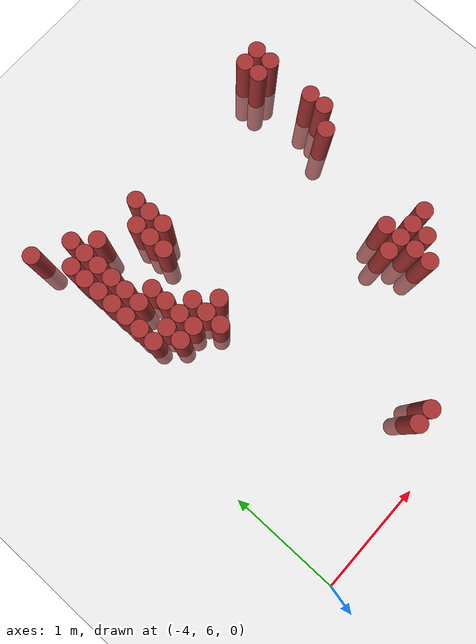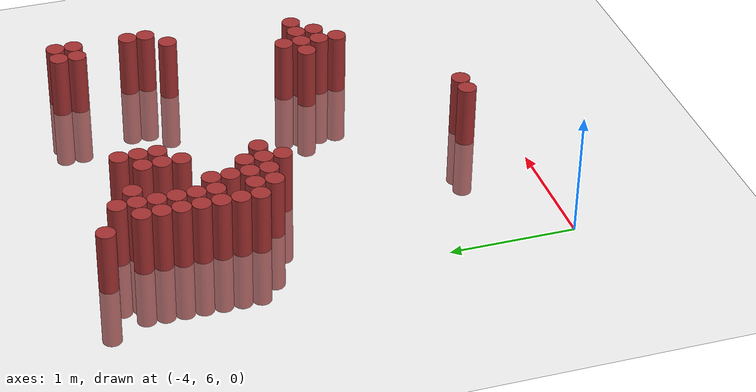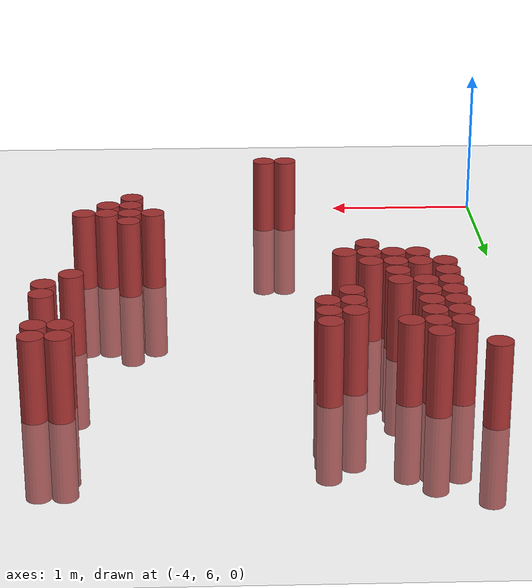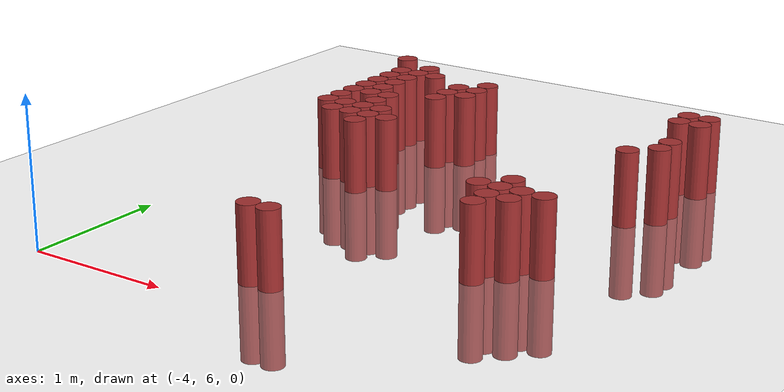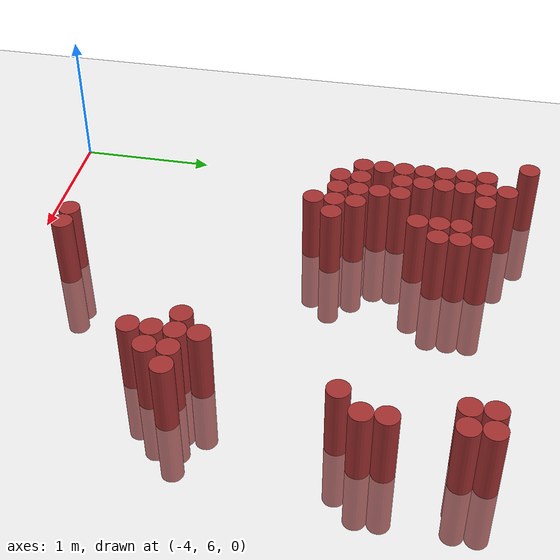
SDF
<sdf version="1.6">
 <world name="default">
  <model name="ground_plane">
   <static>1</static>
   <link name="link">
    <collision name="collision">
     <geometry><plane><normal>0 0 1</normal><size>100 100</size></plane></geometry>
     <surface><friction><ode><mu>100</mu><mu2>50</mu2></ode></friction></surface>
    </collision>
    <visual name="visual">
     <cast_shadows>0</cast_shadows>
     <geometry><plane><normal>0 0 1</normal><size>100 100</size></plane></geometry>
     <material>
      <script><uri>file://media/materials/scripts/gazebo.material</uri><name>Gazebo/Grey</name></script>
     </material>
    </visual>
   </link>
  </model>
  <model name="unit_cylinder_171">
   <static>1</static>
   <pose>-3.675000 9.525000 0.000000 0.000000 0.000000 0.000000</pose>
   <link name="link">
    <inertial>
     <mass>1</mass>
     <inertia><ixx>0.145833</ixx><ixy>0</ixy><ixz>0</ixz><iyy>0.145833</iyy><iyz>0</iyz><izz>0.125</izz></inertia>
    </inertial>
    <collision name="collision">
     <geometry><cylinder><radius>0.075000</radius><length>1</length></cylinder></geometry>
    </collision>
    <visual name="visual">
     <geometry><cylinder><radius>0.075000</radius><length>1</length></cylinder></geometry>
     <material>
      <ambient>0.648000 0.192000 0.192000 1</ambient>
      <diffuse>0.648000 0.192000 0.192000 1</diffuse>
     </material>
     <material>
      <script><name>Gazebo/Grey</name><uri>file://media/materials/scripts/gazebo.material</uri></script>
     </material>
    </visual>
   </link>
  </model>
  <model name="unit_cylinder_172">
   <static>1</static>
   <pose>-3.525000 8.325000 0.000000 0.000000 0.000000 0.000000</pose>
   <link name="link">
    <inertial>
     <mass>1</mass>
     <inertia><ixx>0.145833</ixx><ixy>0</ixy><ixz>0</ixz><iyy>0.145833</iyy><iyz>0</iyz><izz>0.125</izz></inertia>
    </inertial>
    <collision name="collision">
     <geometry><cylinder><radius>0.075000</radius><length>1</length></cylinder></geometry>
    </collision>
    <visual name="visual">
     <geometry><cylinder><radius>0.075000</radius><length>1</length></cylinder></geometry>
     <material>
      <ambient>0.648000 0.192000 0.192000 1</ambient>
      <diffuse>0.648000 0.192000 0.192000 1</diffuse>
     </material>
     <material>
      <script><name>Gazebo/Grey</name><uri>file://media/materials/scripts/gazebo.material</uri></script>
     </material>
    </visual>
   </link>
  </model>
  <model name="unit_cylinder_173">
   <static>1</static>
   <pose>-3.525000 8.475000 0.000000 0.000000 0.000000 0.000000</pose>
   <link name="link">
    <inertial>
     <mass>1</mass>
     <inertia><ixx>0.145833</ixx><ixy>0</ixy><ixz>0</ixz><iyy>0.145833</iyy><iyz>0</iyz><izz>0.125</izz></inertia>
    </inertial>
    <collision name="collision">
     <geometry><cylinder><radius>0.075000</radius><length>1</length></cylinder></geometry>
    </collision>
    <visual name="visual">
     <geometry><cylinder><radius>0.075000</radius><length>1</length></cylinder></geometry>
     <material>
      <ambient>0.648000 0.192000 0.192000 1</ambient>
      <diffuse>0.648000 0.192000 0.192000 1</diffuse>
     </material>
     <material>
      <script><name>Gazebo/Grey</name><uri>file://media/materials/scripts/gazebo.material</uri></script>
     </material>
    </visual>
   </link>
  </model>
  <model name="unit_cylinder_174">
   <static>1</static>
   <pose>-3.525000 8.625000 0.000000 0.000000 0.000000 0.000000</pose>
   <link name="link">
    <inertial>
     <mass>1</mass>
     <inertia><ixx>0.145833</ixx><ixy>0</ixy><ixz>0</ixz><iyy>0.145833</iyy><iyz>0</iyz><izz>0.125</izz></inertia>
    </inertial>
    <collision name="collision">
     <geometry><cylinder><radius>0.075000</radius><length>1</length></cylinder></geometry>
    </collision>
    <visual name="visual">
     <geometry><cylinder><radius>0.075000</radius><length>1</length></cylinder></geometry>
     <material>
      <ambient>0.648000 0.192000 0.192000 1</ambient>
      <diffuse>0.648000 0.192000 0.192000 1</diffuse>
     </material>
     <material>
      <script><name>Gazebo/Grey</name><uri>file://media/materials/scripts/gazebo.material</uri></script>
     </material>
    </visual>
   </link>
  </model>
  <model name="unit_cylinder_175">
   <static>1</static>
   <pose>-3.525000 8.775000 0.000000 0.000000 0.000000 0.000000</pose>
   <link name="link">
    <inertial>
     <mass>1</mass>
     <inertia><ixx>0.145833</ixx><ixy>0</ixy><ixz>0</ixz><iyy>0.145833</iyy><iyz>0</iyz><izz>0.125</izz></inertia>
    </inertial>
    <collision name="collision">
     <geometry><cylinder><radius>0.075000</radius><length>1</length></cylinder></geometry>
    </collision>
    <visual name="visual">
     <geometry><cylinder><radius>0.075000</radius><length>1</length></cylinder></geometry>
     <material>
      <ambient>0.648000 0.192000 0.192000 1</ambient>
      <diffuse>0.648000 0.192000 0.192000 1</diffuse>
     </material>
     <material>
      <script><name>Gazebo/Grey</name><uri>file://media/materials/scripts/gazebo.material</uri></script>
     </material>
    </visual>
   </link>
  </model>
  <model name="unit_cylinder_176">
   <static>1</static>
   <pose>-3.525000 8.925000 0.000000 0.000000 0.000000 0.000000</pose>
   <link name="link">
    <inertial>
     <mass>1</mass>
     <inertia><ixx>0.145833</ixx><ixy>0</ixy><ixz>0</ixz><iyy>0.145833</iyy><iyz>0</iyz><izz>0.125</izz></inertia>
    </inertial>
    <collision name="collision">
     <geometry><cylinder><radius>0.075000</radius><length>1</length></cylinder></geometry>
    </collision>
    <visual name="visual">
     <geometry><cylinder><radius>0.075000</radius><length>1</length></cylinder></geometry>
     <material>
      <ambient>0.648000 0.192000 0.192000 1</ambient>
      <diffuse>0.648000 0.192000 0.192000 1</diffuse>
     </material>
     <material>
      <script><name>Gazebo/Grey</name><uri>file://media/materials/scripts/gazebo.material</uri></script>
     </material>
    </visual>
   </link>
  </model>
  <model name="unit_cylinder_177">
   <static>1</static>
   <pose>-3.525000 9.075000 0.000000 0.000000 0.000000 0.000000</pose>
   <link name="link">
    <inertial>
     <mass>1</mass>
     <inertia><ixx>0.145833</ixx><ixy>0</ixy><ixz>0</ixz><iyy>0.145833</iyy><iyz>0</iyz><izz>0.125</izz></inertia>
    </inertial>
    <collision name="collision">
     <geometry><cylinder><radius>0.075000</radius><length>1</length></cylinder></geometry>
    </collision>
    <visual name="visual">
     <geometry><cylinder><radius>0.075000</radius><length>1</length></cylinder></geometry>
     <material>
      <ambient>0.648000 0.192000 0.192000 1</ambient>
      <diffuse>0.648000 0.192000 0.192000 1</diffuse>
     </material>
     <material>
      <script><name>Gazebo/Grey</name><uri>file://media/materials/scripts/gazebo.material</uri></script>
     </material>
    </visual>
   </link>
  </model>
  <model name="unit_cylinder_178">
   <static>1</static>
   <pose>-3.525000 9.225000 0.000000 0.000000 0.000000 0.000000</pose>
   <link name="link">
    <inertial>
     <mass>1</mass>
     <inertia><ixx>0.145833</ixx><ixy>0</ixy><ixz>0</ixz><iyy>0.145833</iyy><iyz>0</iyz><izz>0.125</izz></inertia>
    </inertial>
    <collision name="collision">
     <geometry><cylinder><radius>0.075000</radius><length>1</length></cylinder></geometry>
    </collision>
    <visual name="visual">
     <geometry><cylinder><radius>0.075000</radius><length>1</length></cylinder></geometry>
     <material>
      <ambient>0.648000 0.192000 0.192000 1</ambient>
      <diffuse>0.648000 0.192000 0.192000 1</diffuse>
     </material>
     <material>
      <script><name>Gazebo/Grey</name><uri>file://media/materials/scripts/gazebo.material</uri></script>
     </material>
    </visual>
   </link>
  </model>
  <model name="unit_cylinder_179">
   <static>1</static>
   <pose>-3.375000 8.175000 0.000000 0.000000 0.000000 0.000000</pose>
   <link name="link">
    <inertial>
     <mass>1</mass>
     <inertia><ixx>0.145833</ixx><ixy>0</ixy><ixz>0</ixz><iyy>0.145833</iyy><iyz>0</iyz><izz>0.125</izz></inertia>
    </inertial>
    <collision name="collision">
     <geometry><cylinder><radius>0.075000</radius><length>1</length></cylinder></geometry>
    </collision>
    <visual name="visual">
     <geometry><cylinder><radius>0.075000</radius><length>1</length></cylinder></geometry>
     <material>
      <ambient>0.648000 0.192000 0.192000 1</ambient>
      <diffuse>0.648000 0.192000 0.192000 1</diffuse>
     </material>
     <material>
      <script><name>Gazebo/Grey</name><uri>file://media/materials/scripts/gazebo.material</uri></script>
     </material>
    </visual>
   </link>
  </model>
  <model name="unit_cylinder_180">
   <static>1</static>
   <pose>-3.375000 8.325000 0.000000 0.000000 0.000000 0.000000</pose>
   <link name="link">
    <inertial>
     <mass>1</mass>
     <inertia><ixx>0.145833</ixx><ixy>0</ixy><ixz>0</ixz><iyy>0.145833</iyy><iyz>0</iyz><izz>0.125</izz></inertia>
    </inertial>
    <collision name="collision">
     <geometry><cylinder><radius>0.075000</radius><length>1</length></cylinder></geometry>
    </collision>
    <visual name="visual">
     <geometry><cylinder><radius>0.075000</radius><length>1</length></cylinder></geometry>
     <material>
      <ambient>0.648000 0.192000 0.192000 1</ambient>
      <diffuse>0.648000 0.192000 0.192000 1</diffuse>
     </material>
     <material>
      <script><name>Gazebo/Grey</name><uri>file://media/materials/scripts/gazebo.material</uri></script>
     </material>
    </visual>
   </link>
  </model>
  <model name="unit_cylinder_181">
   <static>1</static>
   <pose>-3.375000 8.625000 0.000000 0.000000 0.000000 0.000000</pose>
   <link name="link">
    <inertial>
     <mass>1</mass>
     <inertia><ixx>0.145833</ixx><ixy>0</ixy><ixz>0</ixz><iyy>0.145833</iyy><iyz>0</iyz><izz>0.125</izz></inertia>
    </inertial>
    <collision name="collision">
     <geometry><cylinder><radius>0.075000</radius><length>1</length></cylinder></geometry>
    </collision>
    <visual name="visual">
     <geometry><cylinder><radius>0.075000</radius><length>1</length></cylinder></geometry>
     <material>
      <ambient>0.648000 0.192000 0.192000 1</ambient>
      <diffuse>0.648000 0.192000 0.192000 1</diffuse>
     </material>
     <material>
      <script><name>Gazebo/Grey</name><uri>file://media/materials/scripts/gazebo.material</uri></script>
     </material>
    </visual>
   </link>
  </model>
  <model name="unit_cylinder_182">
   <static>1</static>
   <pose>-3.375000 8.775000 0.000000 0.000000 0.000000 0.000000</pose>
   <link name="link">
    <inertial>
     <mass>1</mass>
     <inertia><ixx>0.145833</ixx><ixy>0</ixy><ixz>0</ixz><iyy>0.145833</iyy><iyz>0</iyz><izz>0.125</izz></inertia>
    </inertial>
    <collision name="collision">
     <geometry><cylinder><radius>0.075000</radius><length>1</length></cylinder></geometry>
    </collision>
    <visual name="visual">
     <geometry><cylinder><radius>0.075000</radius><length>1</length></cylinder></geometry>
     <material>
      <ambient>0.648000 0.192000 0.192000 1</ambient>
      <diffuse>0.648000 0.192000 0.192000 1</diffuse>
     </material>
     <material>
      <script><name>Gazebo/Grey</name><uri>file://media/materials/scripts/gazebo.material</uri></script>
     </material>
    </visual>
   </link>
  </model>
  <model name="unit_cylinder_183">
   <static>1</static>
   <pose>-3.375000 8.925000 0.000000 0.000000 0.000000 0.000000</pose>
   <link name="link">
    <inertial>
     <mass>1</mass>
     <inertia><ixx>0.145833</ixx><ixy>0</ixy><ixz>0</ixz><iyy>0.145833</iyy><iyz>0</iyz><izz>0.125</izz></inertia>
    </inertial>
    <collision name="collision">
     <geometry><cylinder><radius>0.075000</radius><length>1</length></cylinder></geometry>
    </collision>
    <visual name="visual">
     <geometry><cylinder><radius>0.075000</radius><length>1</length></cylinder></geometry>
     <material>
      <ambient>0.648000 0.192000 0.192000 1</ambient>
      <diffuse>0.648000 0.192000 0.192000 1</diffuse>
     </material>
     <material>
      <script><name>Gazebo/Grey</name><uri>file://media/materials/scripts/gazebo.material</uri></script>
     </material>
    </visual>
   </link>
  </model>
  <model name="unit_cylinder_184">
   <static>1</static>
   <pose>-3.375000 9.075000 0.000000 0.000000 0.000000 0.000000</pose>
   <link name="link">
    <inertial>
     <mass>1</mass>
     <inertia><ixx>0.145833</ixx><ixy>0</ixy><ixz>0</ixz><iyy>0.145833</iyy><iyz>0</iyz><izz>0.125</izz></inertia>
    </inertial>
    <collision name="collision">
     <geometry><cylinder><radius>0.075000</radius><length>1</length></cylinder></geometry>
    </collision>
    <visual name="visual">
     <geometry><cylinder><radius>0.075000</radius><length>1</length></cylinder></geometry>
     <material>
      <ambient>0.648000 0.192000 0.192000 1</ambient>
      <diffuse>0.648000 0.192000 0.192000 1</diffuse>
     </material>
     <material>
      <script><name>Gazebo/Grey</name><uri>file://media/materials/scripts/gazebo.material</uri></script>
     </material>
    </visual>
   </link>
  </model>
  <model name="unit_cylinder_185">
   <static>1</static>
   <pose>-3.375000 9.225000 0.000000 0.000000 0.000000 0.000000</pose>
   <link name="link">
    <inertial>
     <mass>1</mass>
     <inertia><ixx>0.145833</ixx><ixy>0</ixy><ixz>0</ixz><iyy>0.145833</iyy><iyz>0</iyz><izz>0.125</izz></inertia>
    </inertial>
    <collision name="collision">
     <geometry><cylinder><radius>0.075000</radius><length>1</length></cylinder></geometry>
    </collision>
    <visual name="visual">
     <geometry><cylinder><radius>0.075000</radius><length>1</length></cylinder></geometry>
     <material>
      <ambient>0.648000 0.192000 0.192000 1</ambient>
      <diffuse>0.648000 0.192000 0.192000 1</diffuse>
     </material>
     <material>
      <script><name>Gazebo/Grey</name><uri>file://media/materials/scripts/gazebo.material</uri></script>
     </material>
    </visual>
   </link>
  </model>
  <model name="unit_cylinder_186">
   <static>1</static>
   <pose>-3.375000 9.375000 0.000000 0.000000 0.000000 0.000000</pose>
   <link name="link">
    <inertial>
     <mass>1</mass>
     <inertia><ixx>0.145833</ixx><ixy>0</ixy><ixz>0</ixz><iyy>0.145833</iyy><iyz>0</iyz><izz>0.125</izz></inertia>
    </inertial>
    <collision name="collision">
     <geometry><cylinder><radius>0.075000</radius><length>1</length></cylinder></geometry>
    </collision>
    <visual name="visual">
     <geometry><cylinder><radius>0.075000</radius><length>1</length></cylinder></geometry>
     <material>
      <ambient>0.648000 0.192000 0.192000 1</ambient>
      <diffuse>0.648000 0.192000 0.192000 1</diffuse>
     </material>
     <material>
      <script><name>Gazebo/Grey</name><uri>file://media/materials/scripts/gazebo.material</uri></script>
     </material>
    </visual>
   </link>
  </model>
  <model name="unit_cylinder_189">
   <static>1</static>
   <pose>-3.225000 8.175000 0.000000 0.000000 0.000000 0.000000</pose>
   <link name="link">
    <inertial>
     <mass>1</mass>
     <inertia><ixx>0.145833</ixx><ixy>0</ixy><ixz>0</ixz><iyy>0.145833</iyy><iyz>0</iyz><izz>0.125</izz></inertia>
    </inertial>
    <collision name="collision">
     <geometry><cylinder><radius>0.075000</radius><length>1</length></cylinder></geometry>
    </collision>
    <visual name="visual">
     <geometry><cylinder><radius>0.075000</radius><length>1</length></cylinder></geometry>
     <material>
      <ambient>0.648000 0.192000 0.192000 1</ambient>
      <diffuse>0.648000 0.192000 0.192000 1</diffuse>
     </material>
     <material>
      <script><name>Gazebo/Grey</name><uri>file://media/materials/scripts/gazebo.material</uri></script>
     </material>
    </visual>
   </link>
  </model>
  <model name="unit_cylinder_190">
   <static>1</static>
   <pose>-3.225000 8.325000 0.000000 0.000000 0.000000 0.000000</pose>
   <link name="link">
    <inertial>
     <mass>1</mass>
     <inertia><ixx>0.145833</ixx><ixy>0</ixy><ixz>0</ixz><iyy>0.145833</iyy><iyz>0</iyz><izz>0.125</izz></inertia>
    </inertial>
    <collision name="collision">
     <geometry><cylinder><radius>0.075000</radius><length>1</length></cylinder></geometry>
    </collision>
    <visual name="visual">
     <geometry><cylinder><radius>0.075000</radius><length>1</length></cylinder></geometry>
     <material>
      <ambient>0.648000 0.192000 0.192000 1</ambient>
      <diffuse>0.648000 0.192000 0.192000 1</diffuse>
     </material>
     <material>
      <script><name>Gazebo/Grey</name><uri>file://media/materials/scripts/gazebo.material</uri></script>
     </material>
    </visual>
   </link>
  </model>
  <model name="unit_cylinder_191">
   <static>1</static>
   <pose>-3.225000 8.475000 0.000000 0.000000 0.000000 0.000000</pose>
   <link name="link">
    <inertial>
     <mass>1</mass>
     <inertia><ixx>0.145833</ixx><ixy>0</ixy><ixz>0</ixz><iyy>0.145833</iyy><iyz>0</iyz><izz>0.125</izz></inertia>
    </inertial>
    <collision name="collision">
     <geometry><cylinder><radius>0.075000</radius><length>1</length></cylinder></geometry>
    </collision>
    <visual name="visual">
     <geometry><cylinder><radius>0.075000</radius><length>1</length></cylinder></geometry>
     <material>
      <ambient>0.648000 0.192000 0.192000 1</ambient>
      <diffuse>0.648000 0.192000 0.192000 1</diffuse>
     </material>
     <material>
      <script><name>Gazebo/Grey</name><uri>file://media/materials/scripts/gazebo.material</uri></script>
     </material>
    </visual>
   </link>
  </model>
  <model name="unit_cylinder_192">
   <static>1</static>
   <pose>-3.225000 8.625000 0.000000 0.000000 0.000000 0.000000</pose>
   <link name="link">
    <inertial>
     <mass>1</mass>
     <inertia><ixx>0.145833</ixx><ixy>0</ixy><ixz>0</ixz><iyy>0.145833</iyy><iyz>0</iyz><izz>0.125</izz></inertia>
    </inertial>
    <collision name="collision">
     <geometry><cylinder><radius>0.075000</radius><length>1</length></cylinder></geometry>
    </collision>
    <visual name="visual">
     <geometry><cylinder><radius>0.075000</radius><length>1</length></cylinder></geometry>
     <material>
      <ambient>0.648000 0.192000 0.192000 1</ambient>
      <diffuse>0.648000 0.192000 0.192000 1</diffuse>
     </material>
     <material>
      <script><name>Gazebo/Grey</name><uri>file://media/materials/scripts/gazebo.material</uri></script>
     </material>
    </visual>
   </link>
  </model>
  <model name="unit_cylinder_193">
   <static>1</static>
   <pose>-3.225000 9.225000 0.000000 0.000000 0.000000 0.000000</pose>
   <link name="link">
    <inertial>
     <mass>1</mass>
     <inertia><ixx>0.145833</ixx><ixy>0</ixy><ixz>0</ixz><iyy>0.145833</iyy><iyz>0</iyz><izz>0.125</izz></inertia>
    </inertial>
    <collision name="collision">
     <geometry><cylinder><radius>0.075000</radius><length>1</length></cylinder></geometry>
    </collision>
    <visual name="visual">
     <geometry><cylinder><radius>0.075000</radius><length>1</length></cylinder></geometry>
     <material>
      <ambient>0.648000 0.192000 0.192000 1</ambient>
      <diffuse>0.648000 0.192000 0.192000 1</diffuse>
     </material>
     <material>
      <script><name>Gazebo/Grey</name><uri>file://media/materials/scripts/gazebo.material</uri></script>
     </material>
    </visual>
   </link>
  </model>
  <model name="unit_cylinder_196">
   <static>1</static>
   <pose>-3.075000 8.025000 0.000000 0.000000 0.000000 0.000000</pose>
   <link name="link">
    <inertial>
     <mass>1</mass>
     <inertia><ixx>0.145833</ixx><ixy>0</ixy><ixz>0</ixz><iyy>0.145833</iyy><iyz>0</iyz><izz>0.125</izz></inertia>
    </inertial>
    <collision name="collision">
     <geometry><cylinder><radius>0.075000</radius><length>1</length></cylinder></geometry>
    </collision>
    <visual name="visual">
     <geometry><cylinder><radius>0.075000</radius><length>1</length></cylinder></geometry>
     <material>
      <ambient>0.648000 0.192000 0.192000 1</ambient>
      <diffuse>0.648000 0.192000 0.192000 1</diffuse>
     </material>
     <material>
      <script><name>Gazebo/Grey</name><uri>file://media/materials/scripts/gazebo.material</uri></script>
     </material>
    </visual>
   </link>
  </model>
  <model name="unit_cylinder_197">
   <static>1</static>
   <pose>-3.075000 8.175000 0.000000 0.000000 0.000000 0.000000</pose>
   <link name="link">
    <inertial>
     <mass>1</mass>
     <inertia><ixx>0.145833</ixx><ixy>0</ixy><ixz>0</ixz><iyy>0.145833</iyy><iyz>0</iyz><izz>0.125</izz></inertia>
    </inertial>
    <collision name="collision">
     <geometry><cylinder><radius>0.075000</radius><length>1</length></cylinder></geometry>
    </collision>
    <visual name="visual">
     <geometry><cylinder><radius>0.075000</radius><length>1</length></cylinder></geometry>
     <material>
      <ambient>0.648000 0.192000 0.192000 1</ambient>
      <diffuse>0.648000 0.192000 0.192000 1</diffuse>
     </material>
     <material>
      <script><name>Gazebo/Grey</name><uri>file://media/materials/scripts/gazebo.material</uri></script>
     </material>
    </visual>
   </link>
  </model>
  <model name="unit_cylinder_198">
   <static>1</static>
   <pose>-3.075000 8.325000 0.000000 0.000000 0.000000 0.000000</pose>
   <link name="link">
    <inertial>
     <mass>1</mass>
     <inertia><ixx>0.145833</ixx><ixy>0</ixy><ixz>0</ixz><iyy>0.145833</iyy><iyz>0</iyz><izz>0.125</izz></inertia>
    </inertial>
    <collision name="collision">
     <geometry><cylinder><radius>0.075000</radius><length>1</length></cylinder></geometry>
    </collision>
    <visual name="visual">
     <geometry><cylinder><radius>0.075000</radius><length>1</length></cylinder></geometry>
     <material>
      <ambient>0.648000 0.192000 0.192000 1</ambient>
      <diffuse>0.648000 0.192000 0.192000 1</diffuse>
     </material>
     <material>
      <script><name>Gazebo/Grey</name><uri>file://media/materials/scripts/gazebo.material</uri></script>
     </material>
    </visual>
   </link>
  </model>
  <model name="unit_cylinder_201">
   <static>1</static>
   <pose>-2.925000 8.175000 0.000000 0.000000 0.000000 0.000000</pose>
   <link name="link">
    <inertial>
     <mass>1</mass>
     <inertia><ixx>0.145833</ixx><ixy>0</ixy><ixz>0</ixz><iyy>0.145833</iyy><iyz>0</iyz><izz>0.125</izz></inertia>
    </inertial>
    <collision name="collision">
     <geometry><cylinder><radius>0.075000</radius><length>1</length></cylinder></geometry>
    </collision>
    <visual name="visual">
     <geometry><cylinder><radius>0.075000</radius><length>1</length></cylinder></geometry>
     <material>
      <ambient>0.648000 0.192000 0.192000 1</ambient>
      <diffuse>0.648000 0.192000 0.192000 1</diffuse>
     </material>
     <material>
      <script><name>Gazebo/Grey</name><uri>file://media/materials/scripts/gazebo.material</uri></script>
     </material>
    </visual>
   </link>
  </model>
  <model name="unit_cylinder_202">
   <static>1</static>
   <pose>-2.925000 8.775000 0.000000 0.000000 0.000000 0.000000</pose>
   <link name="link">
    <inertial>
     <mass>1</mass>
     <inertia><ixx>0.145833</ixx><ixy>0</ixy><ixz>0</ixz><iyy>0.145833</iyy><iyz>0</iyz><izz>0.125</izz></inertia>
    </inertial>
    <collision name="collision">
     <geometry><cylinder><radius>0.075000</radius><length>1</length></cylinder></geometry>
    </collision>
    <visual name="visual">
     <geometry><cylinder><radius>0.075000</radius><length>1</length></cylinder></geometry>
     <material>
      <ambient>0.648000 0.192000 0.192000 1</ambient>
      <diffuse>0.648000 0.192000 0.192000 1</diffuse>
     </material>
     <material>
      <script><name>Gazebo/Grey</name><uri>file://media/materials/scripts/gazebo.material</uri></script>
     </material>
    </visual>
   </link>
  </model>
  <model name="unit_cylinder_203">
   <static>1</static>
   <pose>-2.925000 8.925000 0.000000 0.000000 0.000000 0.000000</pose>
   <link name="link">
    <inertial>
     <mass>1</mass>
     <inertia><ixx>0.145833</ixx><ixy>0</ixy><ixz>0</ixz><iyy>0.145833</iyy><iyz>0</iyz><izz>0.125</izz></inertia>
    </inertial>
    <collision name="collision">
     <geometry><cylinder><radius>0.075000</radius><length>1</length></cylinder></geometry>
    </collision>
    <visual name="visual">
     <geometry><cylinder><radius>0.075000</radius><length>1</length></cylinder></geometry>
     <material>
      <ambient>0.648000 0.192000 0.192000 1</ambient>
      <diffuse>0.648000 0.192000 0.192000 1</diffuse>
     </material>
     <material>
      <script><name>Gazebo/Grey</name><uri>file://media/materials/scripts/gazebo.material</uri></script>
     </material>
    </visual>
   </link>
  </model>
  <model name="unit_cylinder_204">
   <static>1</static>
   <pose>-2.925000 9.075000 0.000000 0.000000 0.000000 0.000000</pose>
   <link name="link">
    <inertial>
     <mass>1</mass>
     <inertia><ixx>0.145833</ixx><ixy>0</ixy><ixz>0</ixz><iyy>0.145833</iyy><iyz>0</iyz><izz>0.125</izz></inertia>
    </inertial>
    <collision name="collision">
     <geometry><cylinder><radius>0.075000</radius><length>1</length></cylinder></geometry>
    </collision>
    <visual name="visual">
     <geometry><cylinder><radius>0.075000</radius><length>1</length></cylinder></geometry>
     <material>
      <ambient>0.648000 0.192000 0.192000 1</ambient>
      <diffuse>0.648000 0.192000 0.192000 1</diffuse>
     </material>
     <material>
      <script><name>Gazebo/Grey</name><uri>file://media/materials/scripts/gazebo.material</uri></script>
     </material>
    </visual>
   </link>
  </model>
  <model name="unit_cylinder_206">
   <static>1</static>
   <pose>-2.775000 8.925000 0.000000 0.000000 0.000000 0.000000</pose>
   <link name="link">
    <inertial>
     <mass>1</mass>
     <inertia><ixx>0.145833</ixx><ixy>0</ixy><ixz>0</ixz><iyy>0.145833</iyy><iyz>0</iyz><izz>0.125</izz></inertia>
    </inertial>
    <collision name="collision">
     <geometry><cylinder><radius>0.075000</radius><length>1</length></cylinder></geometry>
    </collision>
    <visual name="visual">
     <geometry><cylinder><radius>0.075000</radius><length>1</length></cylinder></geometry>
     <material>
      <ambient>0.648000 0.192000 0.192000 1</ambient>
      <diffuse>0.648000 0.192000 0.192000 1</diffuse>
     </material>
     <material>
      <script><name>Gazebo/Grey</name><uri>file://media/materials/scripts/gazebo.material</uri></script>
     </material>
    </visual>
   </link>
  </model>
  <model name="unit_cylinder_207">
   <static>1</static>
   <pose>-2.775000 9.075000 0.000000 0.000000 0.000000 0.000000</pose>
   <link name="link">
    <inertial>
     <mass>1</mass>
     <inertia><ixx>0.145833</ixx><ixy>0</ixy><ixz>0</ixz><iyy>0.145833</iyy><iyz>0</iyz><izz>0.125</izz></inertia>
    </inertial>
    <collision name="collision">
     <geometry><cylinder><radius>0.075000</radius><length>1</length></cylinder></geometry>
    </collision>
    <visual name="visual">
     <geometry><cylinder><radius>0.075000</radius><length>1</length></cylinder></geometry>
     <material>
      <ambient>0.648000 0.192000 0.192000 1</ambient>
      <diffuse>0.648000 0.192000 0.192000 1</diffuse>
     </material>
     <material>
      <script><name>Gazebo/Grey</name><uri>file://media/materials/scripts/gazebo.material</uri></script>
     </material>
    </visual>
   </link>
  </model>
  <model name="unit_cylinder_208">
   <static>1</static>
   <pose>-2.775000 9.225000 0.000000 0.000000 0.000000 0.000000</pose>
   <link name="link">
    <inertial>
     <mass>1</mass>
     <inertia><ixx>0.145833</ixx><ixy>0</ixy><ixz>0</ixz><iyy>0.145833</iyy><iyz>0</iyz><izz>0.125</izz></inertia>
    </inertial>
    <collision name="collision">
     <geometry><cylinder><radius>0.075000</radius><length>1</length></cylinder></geometry>
    </collision>
    <visual name="visual">
     <geometry><cylinder><radius>0.075000</radius><length>1</length></cylinder></geometry>
     <material>
      <ambient>0.648000 0.192000 0.192000 1</ambient>
      <diffuse>0.648000 0.192000 0.192000 1</diffuse>
     </material>
     <material>
      <script><name>Gazebo/Grey</name><uri>file://media/materials/scripts/gazebo.material</uri></script>
     </material>
    </visual>
   </link>
  </model>
  <model name="unit_cylinder_210">
   <static>1</static>
   <pose>-2.625000 6.375000 0.000000 0.000000 0.000000 0.000000</pose>
   <link name="link">
    <inertial>
     <mass>1</mass>
     <inertia><ixx>0.145833</ixx><ixy>0</ixy><ixz>0</ixz><iyy>0.145833</iyy><iyz>0</iyz><izz>0.125</izz></inertia>
    </inertial>
    <collision name="collision">
     <geometry><cylinder><radius>0.075000</radius><length>1</length></cylinder></geometry>
    </collision>
    <visual name="visual">
     <geometry><cylinder><radius>0.075000</radius><length>1</length></cylinder></geometry>
     <material>
      <ambient>0.648000 0.192000 0.192000 1</ambient>
      <diffuse>0.648000 0.192000 0.192000 1</diffuse>
     </material>
     <material>
      <script><name>Gazebo/Grey</name><uri>file://media/materials/scripts/gazebo.material</uri></script>
     </material>
    </visual>
   </link>
  </model>
  <model name="unit_cylinder_214">
   <static>1</static>
   <pose>-2.475000 6.375000 0.000000 0.000000 0.000000 0.000000</pose>
   <link name="link">
    <inertial>
     <mass>1</mass>
     <inertia><ixx>0.145833</ixx><ixy>0</ixy><ixz>0</ixz><iyy>0.145833</iyy><iyz>0</iyz><izz>0.125</izz></inertia>
    </inertial>
    <collision name="collision">
     <geometry><cylinder><radius>0.075000</radius><length>1</length></cylinder></geometry>
    </collision>
    <visual name="visual">
     <geometry><cylinder><radius>0.075000</radius><length>1</length></cylinder></geometry>
     <material>
      <ambient>0.648000 0.192000 0.192000 1</ambient>
      <diffuse>0.648000 0.192000 0.192000 1</diffuse>
     </material>
     <material>
      <script><name>Gazebo/Grey</name><uri>file://media/materials/scripts/gazebo.material</uri></script>
     </material>
    </visual>
   </link>
  </model>
  <model name="unit_cylinder_216">
   <static>1</static>
   <pose>-1.725000 7.425000 0.000000 0.000000 0.000000 0.000000</pose>
   <link name="link">
    <inertial>
     <mass>1</mass>
     <inertia><ixx>0.145833</ixx><ixy>0</ixy><ixz>0</ixz><iyy>0.145833</iyy><iyz>0</iyz><izz>0.125</izz></inertia>
    </inertial>
    <collision name="collision">
     <geometry><cylinder><radius>0.075000</radius><length>1</length></cylinder></geometry>
    </collision>
    <visual name="visual">
     <geometry><cylinder><radius>0.075000</radius><length>1</length></cylinder></geometry>
     <material>
      <ambient>0.648000 0.192000 0.192000 1</ambient>
      <diffuse>0.648000 0.192000 0.192000 1</diffuse>
     </material>
     <material>
      <script><name>Gazebo/Grey</name><uri>file://media/materials/scripts/gazebo.material</uri></script>
     </material>
    </visual>
   </link>
  </model>
  <model name="unit_cylinder_217">
   <static>1</static>
   <pose>-1.575000 7.125000 0.000000 0.000000 0.000000 0.000000</pose>
   <link name="link">
    <inertial>
     <mass>1</mass>
     <inertia><ixx>0.145833</ixx><ixy>0</ixy><ixz>0</ixz><iyy>0.145833</iyy><iyz>0</iyz><izz>0.125</izz></inertia>
    </inertial>
    <collision name="collision">
     <geometry><cylinder><radius>0.075000</radius><length>1</length></cylinder></geometry>
    </collision>
    <visual name="visual">
     <geometry><cylinder><radius>0.075000</radius><length>1</length></cylinder></geometry>
     <material>
      <ambient>0.648000 0.192000 0.192000 1</ambient>
      <diffuse>0.648000 0.192000 0.192000 1</diffuse>
     </material>
     <material>
      <script><name>Gazebo/Grey</name><uri>file://media/materials/scripts/gazebo.material</uri></script>
     </material>
    </visual>
   </link>
  </model>
  <model name="unit_cylinder_218">
   <static>1</static>
   <pose>-1.575000 7.275000 0.000000 0.000000 0.000000 0.000000</pose>
   <link name="link">
    <inertial>
     <mass>1</mass>
     <inertia><ixx>0.145833</ixx><ixy>0</ixy><ixz>0</ixz><iyy>0.145833</iyy><iyz>0</iyz><izz>0.125</izz></inertia>
    </inertial>
    <collision name="collision">
     <geometry><cylinder><radius>0.075000</radius><length>1</length></cylinder></geometry>
    </collision>
    <visual name="visual">
     <geometry><cylinder><radius>0.075000</radius><length>1</length></cylinder></geometry>
     <material>
      <ambient>0.648000 0.192000 0.192000 1</ambient>
      <diffuse>0.648000 0.192000 0.192000 1</diffuse>
     </material>
     <material>
      <script><name>Gazebo/Grey</name><uri>file://media/materials/scripts/gazebo.material</uri></script>
     </material>
    </visual>
   </link>
  </model>
  <model name="unit_cylinder_219">
   <static>1</static>
   <pose>-1.575000 7.425000 0.000000 0.000000 0.000000 0.000000</pose>
   <link name="link">
    <inertial>
     <mass>1</mass>
     <inertia><ixx>0.145833</ixx><ixy>0</ixy><ixz>0</ixz><iyy>0.145833</iyy><iyz>0</iyz><izz>0.125</izz></inertia>
    </inertial>
    <collision name="collision">
     <geometry><cylinder><radius>0.075000</radius><length>1</length></cylinder></geometry>
    </collision>
    <visual name="visual">
     <geometry><cylinder><radius>0.075000</radius><length>1</length></cylinder></geometry>
     <material>
      <ambient>0.648000 0.192000 0.192000 1</ambient>
      <diffuse>0.648000 0.192000 0.192000 1</diffuse>
     </material>
     <material>
      <script><name>Gazebo/Grey</name><uri>file://media/materials/scripts/gazebo.material</uri></script>
     </material>
    </visual>
   </link>
  </model>
  <model name="unit_cylinder_220">
   <static>1</static>
   <pose>-1.575000 7.575000 0.000000 0.000000 0.000000 0.000000</pose>
   <link name="link">
    <inertial>
     <mass>1</mass>
     <inertia><ixx>0.145833</ixx><ixy>0</ixy><ixz>0</ixz><iyy>0.145833</iyy><iyz>0</iyz><izz>0.125</izz></inertia>
    </inertial>
    <collision name="collision">
     <geometry><cylinder><radius>0.075000</radius><length>1</length></cylinder></geometry>
    </collision>
    <visual name="visual">
     <geometry><cylinder><radius>0.075000</radius><length>1</length></cylinder></geometry>
     <material>
      <ambient>0.648000 0.192000 0.192000 1</ambient>
      <diffuse>0.648000 0.192000 0.192000 1</diffuse>
     </material>
     <material>
      <script><name>Gazebo/Grey</name><uri>file://media/materials/scripts/gazebo.material</uri></script>
     </material>
    </visual>
   </link>
  </model>
  <model name="unit_cylinder_221">
   <static>1</static>
   <pose>-1.425000 7.275000 0.000000 0.000000 0.000000 0.000000</pose>
   <link name="link">
    <inertial>
     <mass>1</mass>
     <inertia><ixx>0.145833</ixx><ixy>0</ixy><ixz>0</ixz><iyy>0.145833</iyy><iyz>0</iyz><izz>0.125</izz></inertia>
    </inertial>
    <collision name="collision">
     <geometry><cylinder><radius>0.075000</radius><length>1</length></cylinder></geometry>
    </collision>
    <visual name="visual">
     <geometry><cylinder><radius>0.075000</radius><length>1</length></cylinder></geometry>
     <material>
      <ambient>0.648000 0.192000 0.192000 1</ambient>
      <diffuse>0.648000 0.192000 0.192000 1</diffuse>
     </material>
     <material>
      <script><name>Gazebo/Grey</name><uri>file://media/materials/scripts/gazebo.material</uri></script>
     </material>
    </visual>
   </link>
  </model>
  <model name="unit_cylinder_222">
   <static>1</static>
   <pose>-1.425000 7.425000 0.000000 0.000000 0.000000 0.000000</pose>
   <link name="link">
    <inertial>
     <mass>1</mass>
     <inertia><ixx>0.145833</ixx><ixy>0</ixy><ixz>0</ixz><iyy>0.145833</iyy><iyz>0</iyz><izz>0.125</izz></inertia>
    </inertial>
    <collision name="collision">
     <geometry><cylinder><radius>0.075000</radius><length>1</length></cylinder></geometry>
    </collision>
    <visual name="visual">
     <geometry><cylinder><radius>0.075000</radius><length>1</length></cylinder></geometry>
     <material>
      <ambient>0.648000 0.192000 0.192000 1</ambient>
      <diffuse>0.648000 0.192000 0.192000 1</diffuse>
     </material>
     <material>
      <script><name>Gazebo/Grey</name><uri>file://media/materials/scripts/gazebo.material</uri></script>
     </material>
    </visual>
   </link>
  </model>
  <model name="unit_cylinder_223">
   <static>1</static>
   <pose>-1.275000 7.425000 0.000000 0.000000 0.000000 0.000000</pose>
   <link name="link">
    <inertial>
     <mass>1</mass>
     <inertia><ixx>0.145833</ixx><ixy>0</ixy><ixz>0</ixz><iyy>0.145833</iyy><iyz>0</iyz><izz>0.125</izz></inertia>
    </inertial>
    <collision name="collision">
     <geometry><cylinder><radius>0.075000</radius><length>1</length></cylinder></geometry>
    </collision>
    <visual name="visual">
     <geometry><cylinder><radius>0.075000</radius><length>1</length></cylinder></geometry>
     <material>
      <ambient>0.648000 0.192000 0.192000 1</ambient>
      <diffuse>0.648000 0.192000 0.192000 1</diffuse>
     </material>
     <material>
      <script><name>Gazebo/Grey</name><uri>file://media/materials/scripts/gazebo.material</uri></script>
     </material>
    </visual>
   </link>
  </model>
  <model name="unit_cylinder_224">
   <static>1</static>
   <pose>-1.275000 8.475000 0.000000 0.000000 0.000000 0.000000</pose>
   <link name="link">
    <inertial>
     <mass>1</mass>
     <inertia><ixx>0.145833</ixx><ixy>0</ixy><ixz>0</ixz><iyy>0.145833</iyy><iyz>0</iyz><izz>0.125</izz></inertia>
    </inertial>
    <collision name="collision">
     <geometry><cylinder><radius>0.075000</radius><length>1</length></cylinder></geometry>
    </collision>
    <visual name="visual">
     <geometry><cylinder><radius>0.075000</radius><length>1</length></cylinder></geometry>
     <material>
      <ambient>0.648000 0.192000 0.192000 1</ambient>
      <diffuse>0.648000 0.192000 0.192000 1</diffuse>
     </material>
     <material>
      <script><name>Gazebo/Grey</name><uri>file://media/materials/scripts/gazebo.material</uri></script>
     </material>
    </visual>
   </link>
  </model>
  <model name="unit_cylinder_225">
   <static>1</static>
   <pose>-1.275000 9.225000 0.000000 0.000000 0.000000 0.000000</pose>
   <link name="link">
    <inertial>
     <mass>1</mass>
     <inertia><ixx>0.145833</ixx><ixy>0</ixy><ixz>0</ixz><iyy>0.145833</iyy><iyz>0</iyz><izz>0.125</izz></inertia>
    </inertial>
    <collision name="collision">
     <geometry><cylinder><radius>0.075000</radius><length>1</length></cylinder></geometry>
    </collision>
    <visual name="visual">
     <geometry><cylinder><radius>0.075000</radius><length>1</length></cylinder></geometry>
     <material>
      <ambient>0.648000 0.192000 0.192000 1</ambient>
      <diffuse>0.648000 0.192000 0.192000 1</diffuse>
     </material>
     <material>
      <script><name>Gazebo/Grey</name><uri>file://media/materials/scripts/gazebo.material</uri></script>
     </material>
    </visual>
   </link>
  </model>
  <model name="unit_cylinder_226">
   <static>1</static>
   <pose>-1.275000 9.375000 0.000000 0.000000 0.000000 0.000000</pose>
   <link name="link">
    <inertial>
     <mass>1</mass>
     <inertia><ixx>0.145833</ixx><ixy>0</ixy><ixz>0</ixz><iyy>0.145833</iyy><iyz>0</iyz><izz>0.125</izz></inertia>
    </inertial>
    <collision name="collision">
     <geometry><cylinder><radius>0.075000</radius><length>1</length></cylinder></geometry>
    </collision>
    <visual name="visual">
     <geometry><cylinder><radius>0.075000</radius><length>1</length></cylinder></geometry>
     <material>
      <ambient>0.648000 0.192000 0.192000 1</ambient>
      <diffuse>0.648000 0.192000 0.192000 1</diffuse>
     </material>
     <material>
      <script><name>Gazebo/Grey</name><uri>file://media/materials/scripts/gazebo.material</uri></script>
     </material>
    </visual>
   </link>
  </model>
  <model name="unit_cylinder_227">
   <static>1</static>
   <pose>-1.125000 8.625000 0.000000 0.000000 0.000000 0.000000</pose>
   <link name="link">
    <inertial>
     <mass>1</mass>
     <inertia><ixx>0.145833</ixx><ixy>0</ixy><ixz>0</ixz><iyy>0.145833</iyy><iyz>0</iyz><izz>0.125</izz></inertia>
    </inertial>
    <collision name="collision">
     <geometry><cylinder><radius>0.075000</radius><length>1</length></cylinder></geometry>
    </collision>
    <visual name="visual">
     <geometry><cylinder><radius>0.075000</radius><length>1</length></cylinder></geometry>
     <material>
      <ambient>0.648000 0.192000 0.192000 1</ambient>
      <diffuse>0.648000 0.192000 0.192000 1</diffuse>
     </material>
     <material>
      <script><name>Gazebo/Grey</name><uri>file://media/materials/scripts/gazebo.material</uri></script>
     </material>
    </visual>
   </link>
  </model>
  <model name="unit_cylinder_228">
   <static>1</static>
   <pose>-1.125000 8.775000 0.000000 0.000000 0.000000 0.000000</pose>
   <link name="link">
    <inertial>
     <mass>1</mass>
     <inertia><ixx>0.145833</ixx><ixy>0</ixy><ixz>0</ixz><iyy>0.145833</iyy><iyz>0</iyz><izz>0.125</izz></inertia>
    </inertial>
    <collision name="collision">
     <geometry><cylinder><radius>0.075000</radius><length>1</length></cylinder></geometry>
    </collision>
    <visual name="visual">
     <geometry><cylinder><radius>0.075000</radius><length>1</length></cylinder></geometry>
     <material>
      <ambient>0.648000 0.192000 0.192000 1</ambient>
      <diffuse>0.648000 0.192000 0.192000 1</diffuse>
     </material>
     <material>
      <script><name>Gazebo/Grey</name><uri>file://media/materials/scripts/gazebo.material</uri></script>
     </material>
    </visual>
   </link>
  </model>
  <model name="unit_cylinder_229">
   <static>1</static>
   <pose>-1.125000 9.225000 0.000000 0.000000 0.000000 0.000000</pose>
   <link name="link">
    <inertial>
     <mass>1</mass>
     <inertia><ixx>0.145833</ixx><ixy>0</ixy><ixz>0</ixz><iyy>0.145833</iyy><iyz>0</iyz><izz>0.125</izz></inertia>
    </inertial>
    <collision name="collision">
     <geometry><cylinder><radius>0.075000</radius><length>1</length></cylinder></geometry>
    </collision>
    <visual name="visual">
     <geometry><cylinder><radius>0.075000</radius><length>1</length></cylinder></geometry>
     <material>
      <ambient>0.648000 0.192000 0.192000 1</ambient>
      <diffuse>0.648000 0.192000 0.192000 1</diffuse>
     </material>
     <material>
      <script><name>Gazebo/Grey</name><uri>file://media/materials/scripts/gazebo.material</uri></script>
     </material>
    </visual>
   </link>
  </model>
  <model name="unit_cylinder_230">
   <static>1</static>
   <pose>-1.125000 9.375000 0.000000 0.000000 0.000000 0.000000</pose>
   <link name="link">
    <inertial>
     <mass>1</mass>
     <inertia><ixx>0.145833</ixx><ixy>0</ixy><ixz>0</ixz><iyy>0.145833</iyy><iyz>0</iyz><izz>0.125</izz></inertia>
    </inertial>
    <collision name="collision">
     <geometry><cylinder><radius>0.075000</radius><length>1</length></cylinder></geometry>
    </collision>
    <visual name="visual">
     <geometry><cylinder><radius>0.075000</radius><length>1</length></cylinder></geometry>
     <material>
      <ambient>0.648000 0.192000 0.192000 1</ambient>
      <diffuse>0.648000 0.192000 0.192000 1</diffuse>
     </material>
     <material>
      <script><name>Gazebo/Grey</name><uri>file://media/materials/scripts/gazebo.material</uri></script>
     </material>
    </visual>
   </link>
  </model>
 </world>
</sdf>
